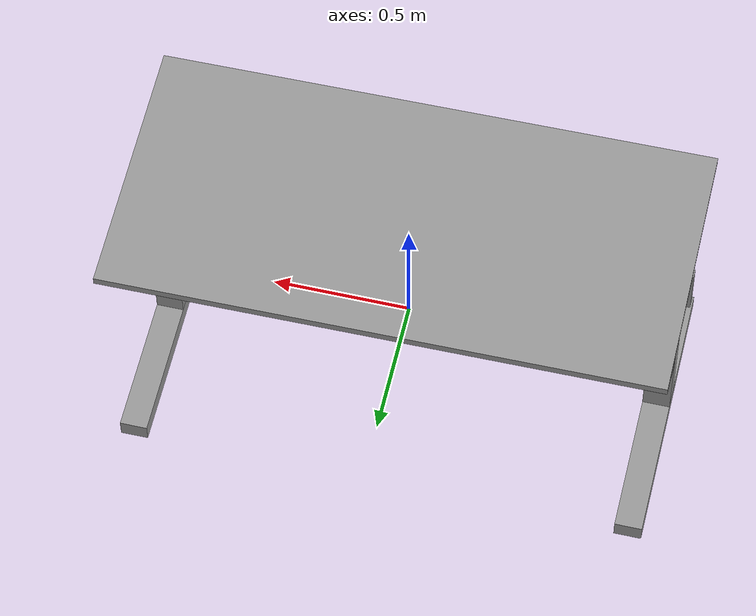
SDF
<?xml version='1.0'?>
<sdf version='1.6'>
  <model name='desk'>
    <link name='link_0'>
      <inertial>
        <mass>1</mass>
        <inertia>
          <ixx>0.166667</ixx>
          <ixy>0</ixy>
          <ixz>0</ixz>
          <iyy>0.166667</iyy>
          <iyz>0</iyz>
          <izz>0.166667</izz>
        </inertia>
        <pose frame=''>0 0 0 0 -0 0</pose>
      </inertial>
      <pose frame=''>-0.922434 0.005357 -0.386429 0 -0 0</pose>
      <gravity>1</gravity>
      <self_collide>0</self_collide>
      <kinematic>0</kinematic>
      <enable_wind>0</enable_wind>
      <visual name='visual'>
        <pose frame=''>0 0 0 0 -0 0</pose>
        <geometry>
          <box>
            <size>0.1 1 0.07</size>
          </box>
        </geometry>
        <material>
          <lighting>1</lighting>
          <script>
            <uri>file://media/materials/scripts/gazebo.material</uri>
            <name>Gazebo/Grey</name>
          </script>
          <shader type='pixel'>
            <normal_map>__default__</normal_map>
          </shader>
          <ambient>0.3 0.3 0.3 1</ambient>
          <diffuse>0.7 0.7 0.7 1</diffuse>
          <specular>0.01 0.01 0.01 1</specular>
          <emissive>0 0 0 1</emissive>
        </material>
        <transparency>0</transparency>
        <cast_shadows>1</cast_shadows>
      </visual>
      <collision name='collision'>
        <laser_retro>0</laser_retro>
        <max_contacts>10</max_contacts>
        <pose frame=''>0 0 0 0 -0 0</pose>
        <geometry>
          <box>
            <size>0.1 1 0.07</size>
          </box>
        </geometry>
        <surface>
          <friction>
            <ode>
              <mu>1</mu>
              <mu2>1</mu2>
              <fdir1>0 0 0</fdir1>
              <slip1>0</slip1>
              <slip2>0</slip2>
            </ode>
            <torsional>
              <coefficient>1</coefficient>
              <patch_radius>0</patch_radius>
              <surface_radius>0</surface_radius>
              <use_patch_radius>1</use_patch_radius>
              <ode>
                <slip>0</slip>
              </ode>
            </torsional>
          </friction>
          <bounce>
            <restitution_coefficient>0</restitution_coefficient>
            <threshold>1e+06</threshold>
          </bounce>
          <contact>
            <collide_without_contact>0</collide_without_contact>
            <collide_without_contact_bitmask>1</collide_without_contact_bitmask>
            <collide_bitmask>1</collide_bitmask>
            <ode>
              <soft_cfm>0</soft_cfm>
              <soft_erp>0.2</soft_erp>
              <kp>1e+13</kp>
              <kd>1</kd>
              <max_vel>0.01</max_vel>
              <min_depth>0</min_depth>
            </ode>
            <bullet>
              <split_impulse>1</split_impulse>
              <split_impulse_penetration_threshold>-0.01</split_impulse_penetration_threshold>
              <soft_cfm>0</soft_cfm>
              <soft_erp>0.2</soft_erp>
              <kp>1e+13</kp>
              <kd>1</kd>
            </bullet>
          </contact>
        </surface>
      </collision>
    </link>
    <link name='link_0_clone'>
      <inertial>
        <mass>1</mass>
        <inertia>
          <ixx>0.166667</ixx>
          <ixy>0</ixy>
          <ixz>0</ixz>
          <iyy>0.166667</iyy>
          <iyz>0</iyz>
          <izz>0.166667</izz>
        </inertia>
        <pose frame=''>0 0 0 0 -0 0</pose>
      </inertial>
      <pose frame=''>0.913246 0.005357 -0.386429 0 -0 0</pose>
      <gravity>1</gravity>
      <self_collide>0</self_collide>
      <kinematic>0</kinematic>
      <enable_wind>0</enable_wind>
      <visual name='visual'>
        <pose frame=''>0 0 0 0 -0 0</pose>
        <geometry>
          <box>
            <size>0.1 1 0.07</size>
          </box>
        </geometry>
        <material>
          <lighting>1</lighting>
          <script>
            <uri>file://media/materials/scripts/gazebo.material</uri>
            <name>Gazebo/Grey</name>
          </script>
          <shader type='pixel'>
            <normal_map>__default__</normal_map>
          </shader>
          <ambient>0.3 0.3 0.3 1</ambient>
          <diffuse>0.7 0.7 0.7 1</diffuse>
          <specular>0.01 0.01 0.01 1</specular>
          <emissive>0 0 0 1</emissive>
        </material>
        <transparency>0</transparency>
        <cast_shadows>1</cast_shadows>
      </visual>
      <collision name='collision'>
        <laser_retro>0</laser_retro>
        <max_contacts>10</max_contacts>
        <pose frame=''>0 0 0 0 -0 0</pose>
        <geometry>
          <box>
            <size>0.1 1 0.07</size>
          </box>
        </geometry>
        <surface>
          <friction>
            <ode>
              <mu>1</mu>
              <mu2>1</mu2>
              <fdir1>0 0 0</fdir1>
              <slip1>0</slip1>
              <slip2>0</slip2>
            </ode>
            <torsional>
              <coefficient>1</coefficient>
              <patch_radius>0</patch_radius>
              <surface_radius>0</surface_radius>
              <use_patch_radius>1</use_patch_radius>
              <ode>
                <slip>0</slip>
              </ode>
            </torsional>
          </friction>
          <bounce>
            <restitution_coefficient>0</restitution_coefficient>
            <threshold>1e+06</threshold>
          </bounce>
          <contact>
            <collide_without_contact>0</collide_without_contact>
            <collide_without_contact_bitmask>1</collide_without_contact_bitmask>
            <collide_bitmask>1</collide_bitmask>
            <ode>
              <soft_cfm>0</soft_cfm>
              <soft_erp>0.2</soft_erp>
              <kp>1e+13</kp>
              <kd>1</kd>
              <max_vel>0.01</max_vel>
              <min_depth>0</min_depth>
            </ode>
            <bullet>
              <split_impulse>1</split_impulse>
              <split_impulse_penetration_threshold>-0.01</split_impulse_penetration_threshold>
              <soft_cfm>0</soft_cfm>
              <soft_erp>0.2</soft_erp>
              <kp>1e+13</kp>
              <kd>1</kd>
            </bullet>
          </contact>
        </surface>
      </collision>
    </link>
    <link name='link_1'>
      <inertial>
        <mass>1</mass>
        <inertia>
          <ixx>0.166667</ixx>
          <ixy>0</ixy>
          <ixz>0</ixz>
          <iyy>0.166667</iyy>
          <iyz>0</iyz>
          <izz>0.166667</izz>
        </inertia>
        <pose frame=''>0 0 0 0 -0 0</pose>
      </inertial>
      <pose frame=''>-0.922434 -0.047143 -0.051429 0 -0 0</pose>
      <gravity>1</gravity>
      <self_collide>0</self_collide>
      <kinematic>0</kinematic>
      <enable_wind>0</enable_wind>
      <visual name='visual'>
        <pose frame=''>0 0 0 0 -0 0</pose>
        <geometry>
          <box>
            <size>0.1 0.07 0.6</size>
          </box>
        </geometry>
        <material>
          <lighting>1</lighting>
          <script>
            <uri>file://media/materials/scripts/gazebo.material</uri>
            <name>Gazebo/Grey</name>
          </script>
          <shader type='pixel'>
            <normal_map>__default__</normal_map>
          </shader>
          <ambient>0.3 0.3 0.3 1</ambient>
          <diffuse>0.7 0.7 0.7 1</diffuse>
          <specular>0.01 0.01 0.01 1</specular>
          <emissive>0 0 0 1</emissive>
        </material>
        <transparency>0</transparency>
        <cast_shadows>1</cast_shadows>
      </visual>
      <collision name='collision'>
        <laser_retro>0</laser_retro>
        <max_contacts>10</max_contacts>
        <pose frame=''>0 0 0 0 -0 0</pose>
        <geometry>
          <box>
            <size>0.1 0.07 0.6</size>
          </box>
        </geometry>
        <surface>
          <friction>
            <ode>
              <mu>1</mu>
              <mu2>1</mu2>
              <fdir1>0 0 0</fdir1>
              <slip1>0</slip1>
              <slip2>0</slip2>
            </ode>
            <torsional>
              <coefficient>1</coefficient>
              <patch_radius>0</patch_radius>
              <surface_radius>0</surface_radius>
              <use_patch_radius>1</use_patch_radius>
              <ode>
                <slip>0</slip>
              </ode>
            </torsional>
          </friction>
          <bounce>
            <restitution_coefficient>0</restitution_coefficient>
            <threshold>1e+06</threshold>
          </bounce>
          <contact>
            <collide_without_contact>0</collide_without_contact>
            <collide_without_contact_bitmask>1</collide_without_contact_bitmask>
            <collide_bitmask>1</collide_bitmask>
            <ode>
              <soft_cfm>0</soft_cfm>
              <soft_erp>0.2</soft_erp>
              <kp>1e+13</kp>
              <kd>1</kd>
              <max_vel>0.01</max_vel>
              <min_depth>0</min_depth>
            </ode>
            <bullet>
              <split_impulse>1</split_impulse>
              <split_impulse_penetration_threshold>-0.01</split_impulse_penetration_threshold>
              <soft_cfm>0</soft_cfm>
              <soft_erp>0.2</soft_erp>
              <kp>1e+13</kp>
              <kd>1</kd>
            </bullet>
          </contact>
        </surface>
      </collision>
    </link>
    <link name='link_1_clone'>
      <inertial>
        <mass>1</mass>
        <inertia>
          <ixx>0.166667</ixx>
          <ixy>0</ixy>
          <ixz>0</ixz>
          <iyy>0.166667</iyy>
          <iyz>0</iyz>
          <izz>0.166667</izz>
        </inertia>
        <pose frame=''>0 0 0 0 -0 0</pose>
      </inertial>
      <pose frame=''>-0.922434 0.022857 0.278571 0 -0 0</pose>
      <gravity>1</gravity>
      <self_collide>0</self_collide>
      <kinematic>0</kinematic>
      <enable_wind>0</enable_wind>
      <visual name='visual'>
        <pose frame=''>0 0 0 0 -0 0</pose>
        <geometry>
          <box>
            <size>0.1 0.07 0.6</size>
          </box>
        </geometry>
        <material>
          <lighting>1</lighting>
          <script>
            <uri>file://media/materials/scripts/gazebo.material</uri>
            <name>Gazebo/Grey</name>
          </script>
          <shader type='pixel'>
            <normal_map>__default__</normal_map>
          </shader>
          <ambient>0.3 0.3 0.3 1</ambient>
          <diffuse>0.7 0.7 0.7 1</diffuse>
          <specular>0.01 0.01 0.01 1</specular>
          <emissive>0 0 0 1</emissive>
        </material>
        <transparency>0</transparency>
        <cast_shadows>1</cast_shadows>
      </visual>
      <collision name='collision'>
        <laser_retro>0</laser_retro>
        <max_contacts>10</max_contacts>
        <pose frame=''>0 0 0 0 -0 0</pose>
        <geometry>
          <box>
            <size>0.1 0.07 0.6</size>
          </box>
        </geometry>
        <surface>
          <friction>
            <ode>
              <mu>1</mu>
              <mu2>1</mu2>
              <fdir1>0 0 0</fdir1>
              <slip1>0</slip1>
              <slip2>0</slip2>
            </ode>
            <torsional>
              <coefficient>1</coefficient>
              <patch_radius>0</patch_radius>
              <surface_radius>0</surface_radius>
              <use_patch_radius>1</use_patch_radius>
              <ode>
                <slip>0</slip>
              </ode>
            </torsional>
          </friction>
          <bounce>
            <restitution_coefficient>0</restitution_coefficient>
            <threshold>1e+06</threshold>
          </bounce>
          <contact>
            <collide_without_contact>0</collide_without_contact>
            <collide_without_contact_bitmask>1</collide_without_contact_bitmask>
            <collide_bitmask>1</collide_bitmask>
            <ode>
              <soft_cfm>0</soft_cfm>
              <soft_erp>0.2</soft_erp>
              <kp>1e+13</kp>
              <kd>1</kd>
              <max_vel>0.01</max_vel>
              <min_depth>0</min_depth>
            </ode>
            <bullet>
              <split_impulse>1</split_impulse>
              <split_impulse_penetration_threshold>-0.01</split_impulse_penetration_threshold>
              <soft_cfm>0</soft_cfm>
              <soft_erp>0.2</soft_erp>
              <kp>1e+13</kp>
              <kd>1</kd>
            </bullet>
          </contact>
        </surface>
      </collision>
    </link>
    <link name='link_1_clone_0'>
      <inertial>
        <mass>1</mass>
        <inertia>
          <ixx>0.166667</ixx>
          <ixy>0</ixy>
          <ixz>0</ixz>
          <iyy>0.166667</iyy>
          <iyz>0</iyz>
          <izz>0.166667</izz>
        </inertia>
        <pose frame=''>0 0 0 0 -0 0</pose>
      </inertial>
      <pose frame=''>0.913246 -0.047143 -0.051429 0 -0 0</pose>
      <gravity>1</gravity>
      <self_collide>0</self_collide>
      <kinematic>0</kinematic>
      <enable_wind>0</enable_wind>
      <visual name='visual'>
        <pose frame=''>0 0 0 0 -0 0</pose>
        <geometry>
          <box>
            <size>0.1 0.07 0.6</size>
          </box>
        </geometry>
        <material>
          <lighting>1</lighting>
          <script>
            <uri>file://media/materials/scripts/gazebo.material</uri>
            <name>Gazebo/Grey</name>
          </script>
          <shader type='pixel'>
            <normal_map>__default__</normal_map>
          </shader>
          <ambient>0.3 0.3 0.3 1</ambient>
          <diffuse>0.7 0.7 0.7 1</diffuse>
          <specular>0.01 0.01 0.01 1</specular>
          <emissive>0 0 0 1</emissive>
        </material>
        <transparency>0</transparency>
        <cast_shadows>1</cast_shadows>
      </visual>
      <collision name='collision'>
        <laser_retro>0</laser_retro>
        <max_contacts>10</max_contacts>
        <pose frame=''>0 0 0 0 -0 0</pose>
        <geometry>
          <box>
            <size>0.1 0.07 0.6</size>
          </box>
        </geometry>
        <surface>
          <friction>
            <ode>
              <mu>1</mu>
              <mu2>1</mu2>
              <fdir1>0 0 0</fdir1>
              <slip1>0</slip1>
              <slip2>0</slip2>
            </ode>
            <torsional>
              <coefficient>1</coefficient>
              <patch_radius>0</patch_radius>
              <surface_radius>0</surface_radius>
              <use_patch_radius>1</use_patch_radius>
              <ode>
                <slip>0</slip>
              </ode>
            </torsional>
          </friction>
          <bounce>
            <restitution_coefficient>0</restitution_coefficient>
            <threshold>1e+06</threshold>
          </bounce>
          <contact>
            <collide_without_contact>0</collide_without_contact>
            <collide_without_contact_bitmask>1</collide_without_contact_bitmask>
            <collide_bitmask>1</collide_bitmask>
            <ode>
              <soft_cfm>0</soft_cfm>
              <soft_erp>0.2</soft_erp>
              <kp>1e+13</kp>
              <kd>1</kd>
              <max_vel>0.01</max_vel>
              <min_depth>0</min_depth>
            </ode>
            <bullet>
              <split_impulse>1</split_impulse>
              <split_impulse_penetration_threshold>-0.01</split_impulse_penetration_threshold>
              <soft_cfm>0</soft_cfm>
              <soft_erp>0.2</soft_erp>
              <kp>1e+13</kp>
              <kd>1</kd>
            </bullet>
          </contact>
        </surface>
      </collision>
    </link>
    <link name='link_1_clone_clone'>
      <inertial>
        <mass>1</mass>
        <inertia>
          <ixx>0.166667</ixx>
          <ixy>0</ixy>
          <ixz>0</ixz>
          <iyy>0.166667</iyy>
          <iyz>0</iyz>
          <izz>0.166667</izz>
        </inertia>
        <pose frame=''>0 0 0 0 -0 0</pose>
      </inertial>
      <pose frame=''>0.913246 0.022857 0.278571 0 -0 0</pose>
      <gravity>1</gravity>
      <self_collide>0</self_collide>
      <kinematic>0</kinematic>
      <enable_wind>0</enable_wind>
      <visual name='visual'>
        <pose frame=''>0 0 0 0 -0 0</pose>
        <geometry>
          <box>
            <size>0.1 0.07 0.6</size>
          </box>
        </geometry>
        <material>
          <lighting>1</lighting>
          <script>
            <uri>file://media/materials/scripts/gazebo.material</uri>
            <name>Gazebo/Grey</name>
          </script>
          <shader type='pixel'>
            <normal_map>__default__</normal_map>
          </shader>
          <ambient>0.3 0.3 0.3 1</ambient>
          <diffuse>0.7 0.7 0.7 1</diffuse>
          <specular>0.01 0.01 0.01 1</specular>
          <emissive>0 0 0 1</emissive>
        </material>
        <transparency>0</transparency>
        <cast_shadows>1</cast_shadows>
      </visual>
      <collision name='collision'>
        <laser_retro>0</laser_retro>
        <max_contacts>10</max_contacts>
        <pose frame=''>0 0 0 0 -0 0</pose>
        <geometry>
          <box>
            <size>0.1 0.07 0.6</size>
          </box>
        </geometry>
        <surface>
          <friction>
            <ode>
              <mu>1</mu>
              <mu2>1</mu2>
              <fdir1>0 0 0</fdir1>
              <slip1>0</slip1>
              <slip2>0</slip2>
            </ode>
            <torsional>
              <coefficient>1</coefficient>
              <patch_radius>0</patch_radius>
              <surface_radius>0</surface_radius>
              <use_patch_radius>1</use_patch_radius>
              <ode>
                <slip>0</slip>
              </ode>
            </torsional>
          </friction>
          <bounce>
            <restitution_coefficient>0</restitution_coefficient>
            <threshold>1e+06</threshold>
          </bounce>
          <contact>
            <collide_without_contact>0</collide_without_contact>
            <collide_without_contact_bitmask>1</collide_without_contact_bitmask>
            <collide_bitmask>1</collide_bitmask>
            <ode>
              <soft_cfm>0</soft_cfm>
              <soft_erp>0.2</soft_erp>
              <kp>1e+13</kp>
              <kd>1</kd>
              <max_vel>0.01</max_vel>
              <min_depth>0</min_depth>
            </ode>
            <bullet>
              <split_impulse>1</split_impulse>
              <split_impulse_penetration_threshold>-0.01</split_impulse_penetration_threshold>
              <soft_cfm>0</soft_cfm>
              <soft_erp>0.2</soft_erp>
              <kp>1e+13</kp>
              <kd>1</kd>
            </bullet>
          </contact>
        </surface>
      </collision>
    </link>
    <link name='link_2'>
      <inertial>
        <mass>1</mass>
        <inertia>
          <ixx>0.166667</ixx>
          <ixy>0</ixy>
          <ixz>0</ixz>
          <iyy>0.166667</iyy>
          <iyz>0</iyz>
          <izz>0.166667</izz>
        </inertia>
        <pose frame=''>0 0 0 0 -0 0</pose>
      </inertial>
      <pose frame=''>-0.002434 -0.017143 0.478571 0 -0 0</pose>
      <gravity>1</gravity>
      <self_collide>0</self_collide>
      <kinematic>0</kinematic>
      <enable_wind>0</enable_wind>
      <visual name='visual'>
        <pose frame=''>0 0 0 0 -0 0</pose>
        <geometry>
          <box>
            <size>2 0.03 0.2</size>
          </box>
        </geometry>
        <material>
          <lighting>1</lighting>
          <script>
            <uri>file://media/materials/scripts/gazebo.material</uri>
            <name>Gazebo/Grey</name>
          </script>
          <shader type='pixel'>
            <normal_map>__default__</normal_map>
          </shader>
          <ambient>0.3 0.3 0.3 1</ambient>
          <diffuse>0.7 0.7 0.7 1</diffuse>
          <specular>0.01 0.01 0.01 1</specular>
          <emissive>0 0 0 1</emissive>
        </material>
        <transparency>0</transparency>
        <cast_shadows>1</cast_shadows>
      </visual>
      <collision name='collision'>
        <laser_retro>0</laser_retro>
        <max_contacts>10</max_contacts>
        <pose frame=''>0 0 0 0 -0 0</pose>
        <geometry>
          <box>
            <size>2 0.03 0.2</size>
          </box>
        </geometry>
        <surface>
          <friction>
            <ode>
              <mu>1</mu>
              <mu2>1</mu2>
              <fdir1>0 0 0</fdir1>
              <slip1>0</slip1>
              <slip2>0</slip2>
            </ode>
            <torsional>
              <coefficient>1</coefficient>
              <patch_radius>0</patch_radius>
              <surface_radius>0</surface_radius>
              <use_patch_radius>1</use_patch_radius>
              <ode>
                <slip>0</slip>
              </ode>
            </torsional>
          </friction>
          <bounce>
            <restitution_coefficient>0</restitution_coefficient>
            <threshold>1e+06</threshold>
          </bounce>
          <contact>
            <collide_without_contact>0</collide_without_contact>
            <collide_without_contact_bitmask>1</collide_without_contact_bitmask>
            <collide_bitmask>1</collide_bitmask>
            <ode>
              <soft_cfm>0</soft_cfm>
              <soft_erp>0.2</soft_erp>
              <kp>1e+13</kp>
              <kd>1</kd>
              <max_vel>0.01</max_vel>
              <min_depth>0</min_depth>
            </ode>
            <bullet>
              <split_impulse>1</split_impulse>
              <split_impulse_penetration_threshold>-0.01</split_impulse_penetration_threshold>
              <soft_cfm>0</soft_cfm>
              <soft_erp>0.2</soft_erp>
              <kp>1e+13</kp>
              <kd>1</kd>
            </bullet>
          </contact>
        </surface>
      </collision>
    </link>
    <link name='link_3'>
      <inertial>
        <mass>1.59334</mass>
        <inertia>
          <ixx>0.121473</ixx>
          <ixy>0</ixy>
          <ixz>0</ixz>
          <iyy>0.531234</iyy>
          <iyz>0</iyz>
          <izz>0.652468</izz>
        </inertia>
        <pose frame=''>0 0 0 0 -0 0</pose>
      </inertial>
      <pose frame=''>0.001619 -0.000505 0.588571 0 -0 0.006324</pose>
      <gravity>1</gravity>
      <self_collide>0</self_collide>
      <kinematic>0</kinematic>
      <enable_wind>0</enable_wind>
      <visual name='visual'>
        <pose frame=''>0 0 0 0 -0 0</pose>
        <geometry>
          <box>
            <size>2 0.956011 0.03</size>
          </box>
        </geometry>
        <material>
          <lighting>1</lighting>
          <script>
            <uri>file://media/materials/scripts/gazebo.material</uri>
            <name>Gazebo/Grey</name>
          </script>
          <shader type='pixel'>
            <normal_map>__default__</normal_map>
          </shader>
          <ambient>0.3 0.3 0.3 1</ambient>
          <diffuse>0.7 0.7 0.7 1</diffuse>
          <specular>0.01 0.01 0.01 1</specular>
          <emissive>0 0 0 1</emissive>
        </material>
        <transparency>0</transparency>
        <cast_shadows>1</cast_shadows>
      </visual>
      <collision name='collision'>
        <laser_retro>0</laser_retro>
        <max_contacts>10</max_contacts>
        <pose frame=''>0 0 0 0 -0 0</pose>
        <geometry>
          <box>
            <size>2 0.956011 0.03</size>
          </box>
        </geometry>
        <surface>
          <friction>
            <ode>
              <mu>1</mu>
              <mu2>1</mu2>
              <fdir1>0 0 0</fdir1>
              <slip1>0</slip1>
              <slip2>0</slip2>
            </ode>
            <torsional>
              <coefficient>1</coefficient>
              <patch_radius>0</patch_radius>
              <surface_radius>0</surface_radius>
              <use_patch_radius>1</use_patch_radius>
              <ode>
                <slip>0</slip>
              </ode>
            </torsional>
          </friction>
          <bounce>
            <restitution_coefficient>0</restitution_coefficient>
            <threshold>1e+06</threshold>
          </bounce>
          <contact>
            <collide_without_contact>0</collide_without_contact>
            <collide_without_contact_bitmask>1</collide_without_contact_bitmask>
            <collide_bitmask>1</collide_bitmask>
            <ode>
              <soft_cfm>0</soft_cfm>
              <soft_erp>0.2</soft_erp>
              <kp>1e+13</kp>
              <kd>1</kd>
              <max_vel>0.01</max_vel>
              <min_depth>0</min_depth>
            </ode>
            <bullet>
              <split_impulse>1</split_impulse>
              <split_impulse_penetration_threshold>-0.01</split_impulse_penetration_threshold>
              <soft_cfm>0</soft_cfm>
              <soft_erp>0.2</soft_erp>
              <kp>1e+13</kp>
              <kd>1</kd>
            </bullet>
          </contact>
        </surface>
      </collision>
    </link>
    <joint name='link_0_JOINT_0' type='fixed'>
      <parent>link_0</parent>
      <child>link_1</child>
      <pose frame=''>0 0 0 0 -0 0</pose>
      <physics>
        <ode>
          <limit>
            <cfm>0</cfm>
            <erp>0.2</erp>
          </limit>
          <suspension>
            <cfm>0</cfm>
            <erp>0.2</erp>
          </suspension>
        </ode>
      </physics>
    </joint>
    <joint name='link_0_clone_JOINT_2' type='fixed'>
      <parent>link_0_clone</parent>
      <child>link_1_clone_0</child>
      <pose frame=''>0 0 0 0 -0 0</pose>
      <physics>
        <ode>
          <limit>
            <cfm>0</cfm>
            <erp>0.2</erp>
          </limit>
          <suspension>
            <cfm>0</cfm>
            <erp>0.2</erp>
          </suspension>
        </ode>
      </physics>
    </joint>
    <joint name='link_1_clone_JOINT_4' type='fixed'>
      <parent>link_1_clone</parent>
      <child>link_2</child>
      <pose frame=''>0 0 0 0 -0 0</pose>
      <physics>
        <ode>
          <limit>
            <cfm>0</cfm>
            <erp>0.2</erp>
          </limit>
          <suspension>
            <cfm>0</cfm>
            <erp>0.2</erp>
          </suspension>
        </ode>
      </physics>
    </joint>
    <joint name='link_1_clone_clone_JOINT_5' type='fixed'>
      <parent>link_1_clone_clone</parent>
      <child>link_2</child>
      <pose frame=''>0 0 0 0 -0 0</pose>
      <physics>
        <ode>
          <limit>
            <cfm>0</cfm>
            <erp>0.2</erp>
          </limit>
          <suspension>
            <cfm>0</cfm>
            <erp>0.2</erp>
          </suspension>
        </ode>
      </physics>
    </joint>
    <joint name='link_2_JOINT_6' type='fixed'>
      <parent>link_2</parent>
      <child>link_3</child>
      <pose frame=''>0 0 0 0 -0 0</pose>
      <physics>
        <ode>
          <limit>
            <cfm>0</cfm>
            <erp>0.2</erp>
          </limit>
          <suspension>
            <cfm>0</cfm>
            <erp>0.2</erp>
          </suspension>
        </ode>
      </physics>
    </joint>
    <joint name='prismatic_1' type='prismatic'>
      <parent>link_1</parent>
      <child>link_1_clone</child>
      <pose frame=''>0 0 0 0 -0 0</pose>
      <axis>
        <xyz>0 0 1</xyz>
        <use_parent_model_frame>0</use_parent_model_frame>
        <limit>
          <lower>-0.1</lower>
          <upper>0.2</upper>
          <effort>-1</effort>
          <velocity>-1</velocity>
        </limit>
        <dynamics>
          <spring_reference>0</spring_reference>
          <spring_stiffness>0</spring_stiffness>
          <damping>0</damping>
          <friction>0</friction>
        </dynamics>
      </axis>
      <physics>
        <ode>
          <limit>
            <cfm>0</cfm>
            <erp>0.2</erp>
          </limit>
          <suspension>
            <cfm>0</cfm>
            <erp>0.2</erp>
          </suspension>
        </ode>
      </physics>
    </joint>
    <joint name='prismatic_2' type='prismatic'>
      <parent>link_1_clone_0</parent>
      <child>link_1_clone_clone</child>
      <pose frame=''>0 0 0 0 -0 0</pose>
      <axis>
        <xyz>0 0 1</xyz>
        <use_parent_model_frame>0</use_parent_model_frame>
        <limit>
          <lower>-0.1</lower>
          <upper>0.2</upper>
          <effort>-1</effort>
          <velocity>-1</velocity>
        </limit>
        <dynamics>
          <spring_reference>0</spring_reference>
          <spring_stiffness>0</spring_stiffness>
          <damping>0</damping>
          <friction>0</friction>
        </dynamics>
      </axis>
      <physics>
        <ode>
          <limit>
            <cfm>0</cfm>
            <erp>0.2</erp>
          </limit>
          <suspension>
            <cfm>0</cfm>
            <erp>0.2</erp>
          </suspension>
        </ode>
      </physics>
    </joint>
    <static>0</static>
    <allow_auto_disable>1</allow_auto_disable>
  </model>
</sdf>
